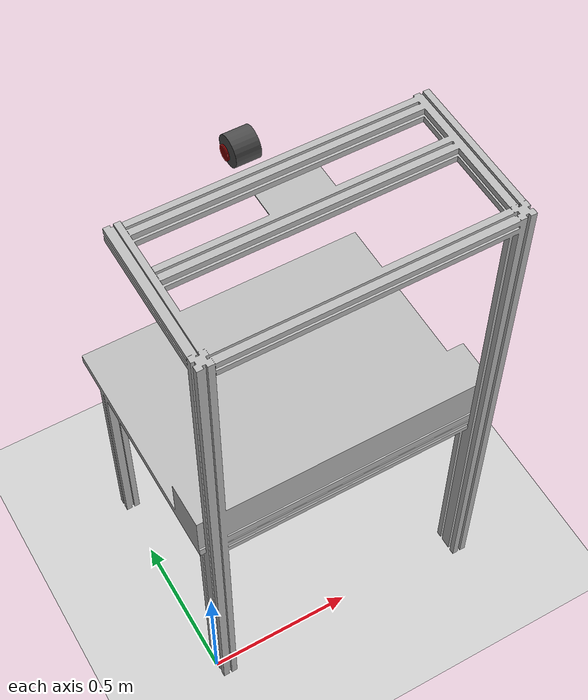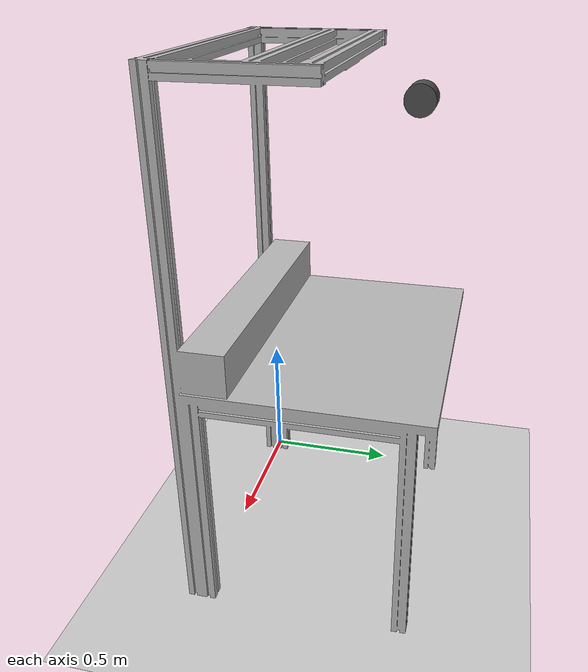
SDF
<?xml version="1.0" ?>
<sdf version="1.4">
  <world name="default">
    <!-- Optimized physics for faster simulation -->
    <physics type='ode'>
      <gravity>0 0 -9.81</gravity>
      <max_step_size>0.002</max_step_size>
      <real_time_factor>1</real_time_factor>
      <real_time_update_rate>500</real_time_update_rate>
      <ode>
        <solver>
          <type>quick</type>
          <iters>20</iters>
          <sor>1.3</sor>
        </solver>
        <constraints>
          <cfm>0.0</cfm>
          <erp>0.2</erp>
          <contact_max_correcting_vel>100</contact_max_correcting_vel>
          <contact_surface_layer>0.001</contact_surface_layer>
        </constraints>
      </ode>
    </physics>

    <!-- A global light source -->
    <include>
      <uri>model://sun</uri>
    </include>

    <!-- A ground plane -->
    <include>
      <uri>model://ground_plane</uri>
    </include>

    <!-- Main tavolo (robot workbench) - robot is mounted on this at z=1.75 -->
    <include>
      <name>tavolo</name>
      <uri>model://tavolo</uri>
      <pose>0.0 0.0 0.0 0 0 0</pose>
    </include>

    <!-- RGB-D Camera fixed above workspace -->
    <model name="rgbd_camera">
      <static>true</static>
      <!-- Position: between source (tavolo) and target table, looking down -->
      <pose>0.5 0.65 1.7 0 1.57 0</pose>

      <link name="camera_link">
        <!-- Visual representation of camera-->
        <!-- Camera body -->
        <visual name="body">
          <pose>0 0 0 0 0 0</pose>
          <geometry>
            <cylinder>
              <radius>0.05</radius>
              <length>0.08</length>
            </cylinder>
          </geometry>
          <material>
            <ambient>0.2 0.2 0.2 1</ambient>
            <diffuse>0.3 0.3 0.3 1</diffuse>
          </material>
        </visual>

        <!-- Camera lens -->
        <visual name="lens">
          <pose>0 0 -0.05 0 0 0</pose>
          <geometry>
            <cylinder>
              <radius>0.025</radius>
              <length>0.005</length>
            </cylinder>
          </geometry>
          <material>
            <ambient>0.3 0.0 0.0 1</ambient>
            <diffuse>0.5 0.0 0.0 1</diffuse>
          </material>
        </visual>

        <!-- Camera sensor with RGB-D capability -->
        <sensor name="camera" type="depth">
          <update_rate>30</update_rate>
          <camera>
            <horizontal_fov>1.396</horizontal_fov>  <!-- 80 degrees -->
            <image>
              <width>640</width>
              <height>480</height>
              <format>R8G8B8</format>
            </image>
            <clip>
              <near>0.1</near>
              <far>5.0</far>
            </clip>
          </camera>

          <!-- Gazebo ROS plugin for RGB-D -->
          <plugin name="camera_controller" filename="libgazebo_ros_openni_kinect.so">
            <baseline>0.2</baseline>
            <alwaysOn>true</alwaysOn>
            <updateRate>30.0</updateRate>
            <cameraName>camera</cameraName>
            <imageTopicName>rgb/image_raw</imageTopicName>
            <cameraInfoTopicName>rgb/camera_info</cameraInfoTopicName>
            <depthImageTopicName>depth/image_raw</depthImageTopicName>
            <depthImageCameraInfoTopicName>depth/camera_info</depthImageCameraInfoTopicName>
            <pointCloudTopicName>depth/points</pointCloudTopicName>
            <frameName>camera_optical_frame</frameName>
            <distortionK1>0.0</distortionK1>
            <distortionK2>0.0</distortionK2>
            <distortionK3>0.0</distortionK3>
            <distortionT1>0.0</distortionT1>
            <distortionT2>0.0</distortionT2>
          </plugin>
        </sensor>
      </link>
    </model>

    <!-- Camera view -->
    <gui>
      <camera name="gzclient_camera">
        <pose>1.5 2.0 2.0 0 0.4 -2.0</pose>
      </camera>
    </gui>

  </world>
</sdf>

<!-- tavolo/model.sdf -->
<sdf version="1.4">

<physics type="ode">

      <ode>

        <constraints>
          <contact_max_correcting_vel>0.1</contact_max_correcting_vel>
          <contact_surface_layer>0.0001</contact_surface_layer>
        </constraints>
      </ode>
	<max_contacts>10</max_contacts>
	</physics>

	<model name="tavolo">
	    <static>true</static>
		<link name="link">

		     <collision name="base">
			<pose>0.5 0.4 0.85 0 0 0</pose>
			<geometry>
			  <box>
			    <size>1 0.8 0.04</size>
			  </box>
			</geometry>

				<!-- see https://gazebosim.org/tutorials?tut=physics_params&cat=physics-->
				 <surface>
				  <bounce>
				    <restitution_coefficient>0.01</restitution_coefficient>
				    <threshold>5.0</threshold>
				  </bounce>
				  <friction>
				    <ode>
				      <mu>10</mu>
				      <mu2>10</mu2>
				    </ode>
				  </friction>
				  <contact>
				     <ode>
					<max_vel>0.1</max_vel>
					<min_depth>0.001</min_depth>
				        <kp>1000000.0</kp>
					<kd>1000.0</kd>
				      </ode>
			            </contact>
				</surface>

		     	</collision>

	     			<collision name="box">
				<pose>0.5 0.08 0.95 0 0 0</pose>
				<geometry>
				  <box>
				    <size>1 0.15 0.15</size>
				  </box>
				</geometry>

				 <surface>
				  <bounce>
				    <restitution_coefficient>0.01</restitution_coefficient>
				    <threshold>5.0</threshold>
				  </bounce>
				  <friction>
				    <ode>
				      <mu>10</mu>
				      <mu2>10</mu2>
				    </ode>
				  </friction>
				  <contact>
				     <ode>
					<max_vel>0.1</max_vel>
					<min_depth>0.001</min_depth>
				        <kp>1000000.0</kp>
					<kd>1000.0</kd>
				      </ode>
			            </contact>
				</surface>

			      </collision>

			   <collision name="back">
				<pose>0.5 -0.02 1.35 1.57 0 0</pose>
				<geometry>
				  <box>
				    <size>1 1.0 0.04</size>
				  </box>
				</geometry>

				 <surface>
				  <bounce>
				    <restitution_coefficient>0.01</restitution_coefficient>
				    <threshold>5.0</threshold>
				  </bounce>
				  <friction>
				    <ode>
				      <mu>10</mu>
				      <mu2>10</mu2>
				    </ode>
				  </friction>
				  <contact>
				     <ode>
					<max_vel>0.1</max_vel>
					<min_depth>0.001</min_depth>
				        <kp>1000000.0</kp>
					<kd>1000.0</kd>
				      </ode>
			            </contact>
				</surface>

			      </collision>

			<visual name="visual">
				<geometry>
					<mesh>
						<uri>model://tavolo/mesh/tavolo.stl</uri>
                                                <scale>0.001 0.001 0.001</scale>
					</mesh>
				</geometry>
			</visual>
		</link>
	</model>
</sdf>
